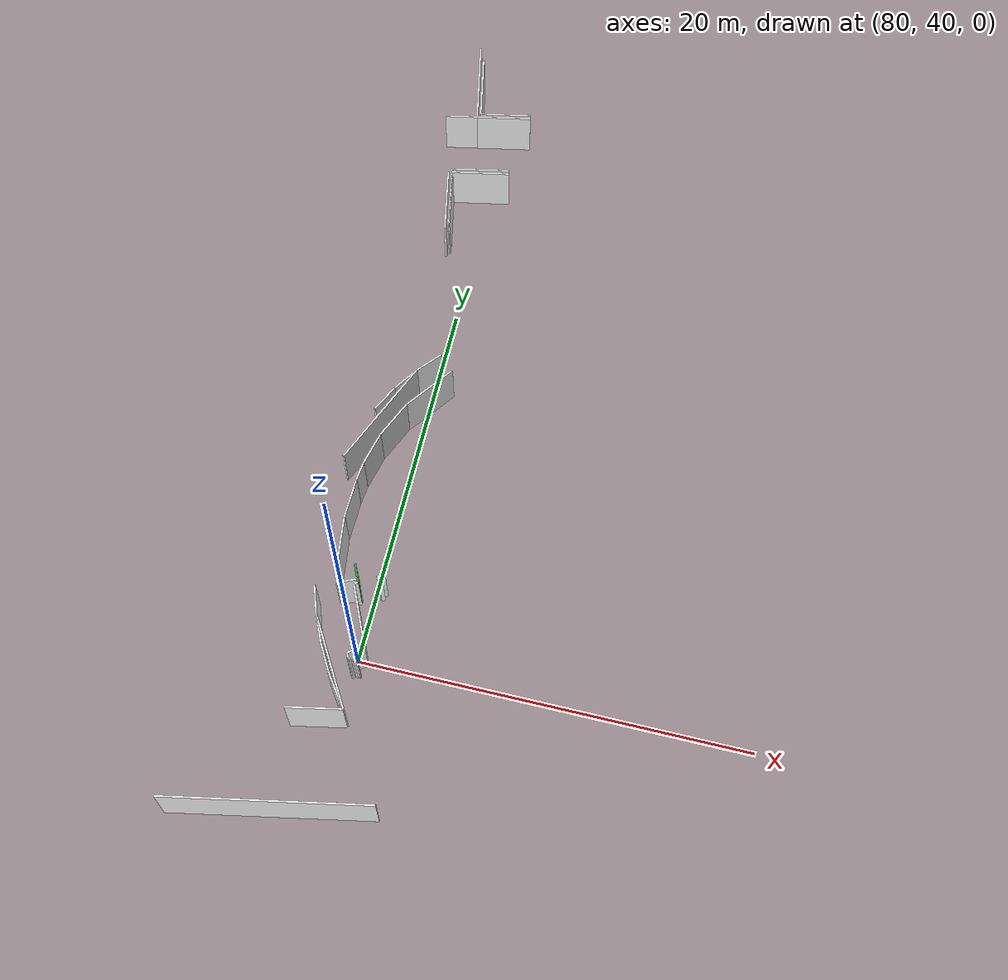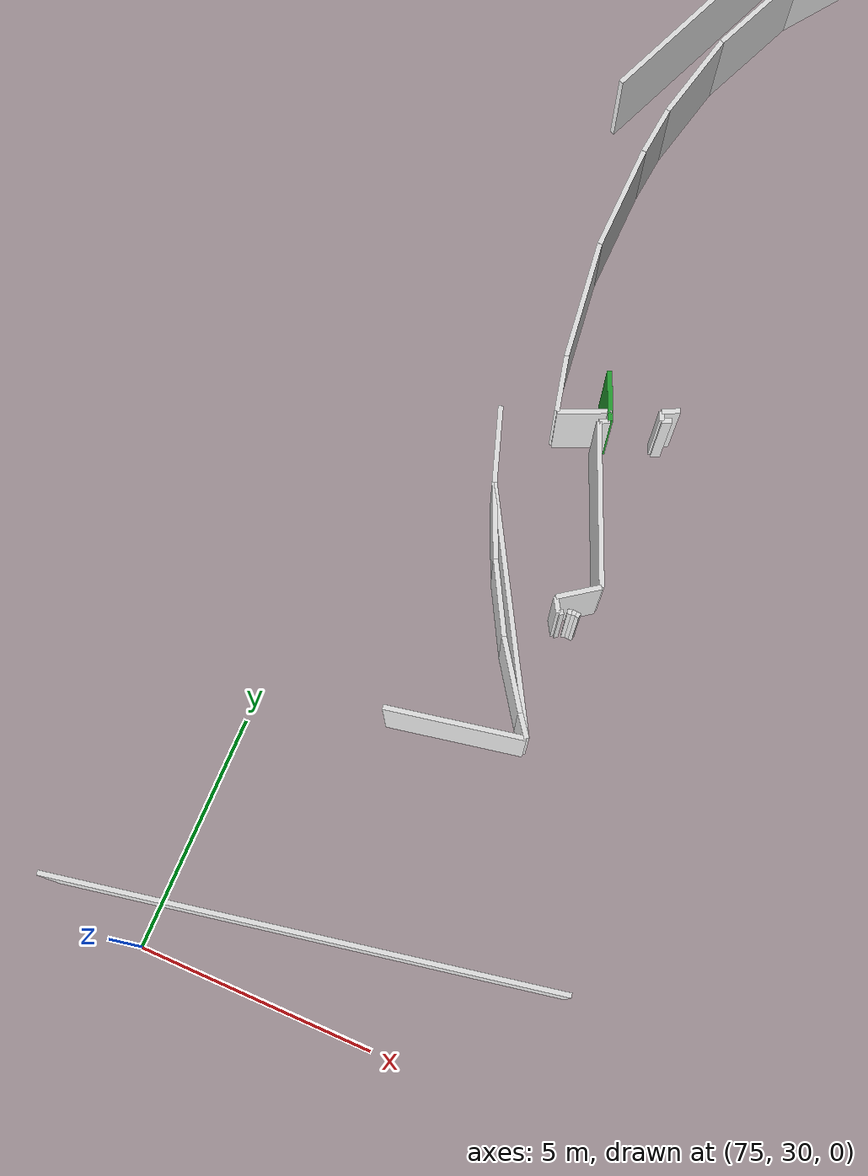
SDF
<sdf version="1.6">
 <world name="default">
  <model name="wall_79.2_43.4_1.5">
   <static>true</static>
   <pose>79.16499999992084 43.43500000005588 1.5 0 0 1.9941070825734064</pose>
   <link name="link">
    <visual name="visual">
     <geometry><box><size>0.9980981917594033 0.1 3</size></box></geometry>
     <material>
      <script><uri>file://media/materials/scripts/gazebo.material</uri><name>Gazebo/Green</name></script>
     </material>
    </visual>
    <collision name="collision"><geometry><box><size>0.9980981917594033 0.1 3</size></box></geometry></collision>
   </link>
  </model>
  <model name="wall_78.2_73.0_1.5">
   <static>true</static>
   <pose>78.22500000000582 73.0250000001397 1.5 0 0 -1.374478352720188</pose>
   <link name="link">
    <visual name="visual">
     <geometry><box><size>3.6399175813241733 0.1 3</size></box></geometry>
     <material>
      <script><uri>file://media/materials/scripts/gazebo.material</uri><name>Gazebo/White</name></script>
     </material>
    </visual>
    <collision name="collision"><geometry><box><size>3.6399175813241733 0.1 3</size></box></geometry></collision>
   </link>
  </model>
  <model name="wall_79.9_71.5_1.5">
   <static>true</static>
   <pose>79.93000000002212 71.50500000012107 1.5 0 0 0.19383178298877288</pose>
   <link name="link">
    <visual name="visual">
     <geometry><box><size>2.7515268488324223 0.1 3</size></box></geometry>
     <material>
      <script><uri>file://media/materials/scripts/gazebo.material</uri><name>Gazebo/White</name></script>
     </material>
    </visual>
    <collision name="collision"><geometry><box><size>2.7515268488324223 0.1 3</size></box></geometry></collision>
   </link>
  </model>
  <model name="wall_79.5_67.5_1.5">
   <static>true</static>
   <pose>79.48500000001513 67.47999999998137 1.5 0 0 -2.9473516575252563</pose>
   <link name="link">
    <visual name="visual">
     <geometry><box><size>3.1084562083905816 0.1 3</size></box></geometry>
     <material>
      <script><uri>file://media/materials/scripts/gazebo.material</uri><name>Gazebo/White</name></script>
     </material>
    </visual>
    <collision name="collision"><geometry><box><size>3.1084562083905816 0.1 3</size></box></geometry></collision>
   </link>
  </model>
  <model name="wall_78.3_65.5_1.5">
   <static>true</static>
   <pose>78.29000000000815 65.52000000001863 1.5 0 0 -1.3745595150025516</pose>
   <link name="link">
    <visual name="visual">
     <geometry><box><size>3.384966765264479 0.1 3</size></box></geometry>
     <material>
      <script><uri>file://media/materials/scripts/gazebo.material</uri><name>Gazebo/White</name></script>
     </material>
    </visual>
    <collision name="collision"><geometry><box><size>3.384966765264479 0.1 3</size></box></geometry></collision>
   </link>
  </model>
  <model name="wall_79.3_42.9_1.5">
   <static>true</static>
   <pose>79.26999999998952 42.93500000005588 1.5 0 0 0.4228539254915673</pose>
   <link name="link">
    <visual name="visual">
     <geometry><box><size>0.21931712194408015 0.1 3</size></box></geometry>
     <material>
      <script><uri>file://media/materials/scripts/gazebo.material</uri><name>Gazebo/White</name></script>
     </material>
    </visual>
    <collision name="collision"><geometry><box><size>0.21931712194408015 0.1 3</size></box></geometry></collision>
   </link>
  </model>
  <model name="wall_80.4_43.4_1.5">
   <static>true</static>
   <pose>80.37000000002445 43.43000000016764 1.5 0 0 0.4182243299392765</pose>
   <link name="link">
    <visual name="visual">
     <geometry><box><size>0.19697715605979885 0.1 3</size></box></geometry>
     <material>
      <script><uri>file://media/materials/scripts/gazebo.material</uri><name>Gazebo/White</name></script>
     </material>
    </visual>
    <collision name="collision"><geometry><box><size>0.19697715605979885 0.1 3</size></box></geometry></collision>
   </link>
  </model>
  <model name="wall_80.3_39.2_1.5">
   <static>true</static>
   <pose>80.32000000000698 39.22500000009313 1.5 0 0 3.0172376617295393</pose>
   <link name="link">
    <visual name="visual">
     <geometry><box><size>0.08062257741367569 0.1 3</size></box></geometry>
     <material>
      <script><uri>file://media/materials/scripts/gazebo.material</uri><name>Gazebo/White</name></script>
     </material>
    </visual>
    <collision name="collision"><geometry><box><size>0.08062257741367569 0.1 3</size></box></geometry></collision>
   </link>
  </model>
  <model name="wall_80.2_39.2_1.5">
   <static>true</static>
   <pose>80.23500000001513 39.22999999998137 1.5 0 0 3.141592653589793</pose>
   <link name="link">
    <visual name="visual">
     <geometry><box><size>0.09000000002561137 0.1 3</size></box></geometry>
     <material>
      <script><uri>file://media/materials/scripts/gazebo.material</uri><name>Gazebo/White</name></script>
     </material>
    </visual>
    <collision name="collision"><geometry><box><size>0.09000000002561137 0.1 3</size></box></geometry></collision>
   </link>
  </model>
  <model name="wall_80.1_39.2_1.5">
   <static>true</static>
   <pose>80.14999999999418 39.21999999997206 1.5 0 0 -2.8966139902917303</pose>
   <link name="link">
    <visual name="visual">
     <geometry><box><size>0.08246211253268232 0.1 3</size></box></geometry>
     <material>
      <script><uri>file://media/materials/scripts/gazebo.material</uri><name>Gazebo/White</name></script>
     </material>
    </visual>
    <collision name="collision"><geometry><box><size>0.08246211253268232 0.1 3</size></box></geometry></collision>
   </link>
  </model>
  <model name="wall_80.0_39.1_1.5">
   <static>true</static>
   <pose>80.00499999997555 39.14500000001863 1.5 0 0 -2.521343169416129</pose>
   <link name="link">
    <visual name="visual">
     <geometry><box><size>0.08602325256784608 0.1 3</size></box></geometry>
     <material>
      <script><uri>file://media/materials/scripts/gazebo.material</uri><name>Gazebo/White</name></script>
     </material>
    </visual>
    <collision name="collision"><geometry><box><size>0.08602325256784608 0.1 3</size></box></geometry></collision>
   </link>
  </model>
  <model name="wall_79.9_39.2_1.5">
   <static>true</static>
   <pose>79.875 39.24499999987893 1.5 0 0 2.1327178891317615</pose>
   <link name="link">
    <visual name="visual">
     <geometry><box><size>0.3190611227089686 0.1 3</size></box></geometry>
     <material>
      <script><uri>file://media/materials/scripts/gazebo.material</uri><name>Gazebo/White</name></script>
     </material>
    </visual>
    <collision name="collision"><geometry><box><size>0.3190611227089686 0.1 3</size></box></geometry></collision>
   </link>
  </model>
  <model name="wall_80.2_39.6_1.5">
   <static>true</static>
   <pose>80.15499999999884 39.64500000001863 1.5 0 0 0.6279812908789976</pose>
   <link name="link">
    <visual name="visual">
     <geometry><box><size>0.9021086410927485 0.1 3</size></box></geometry>
     <material>
      <script><uri>file://media/materials/scripts/gazebo.material</uri><name>Gazebo/White</name></script>
     </material>
    </visual>
    <collision name="collision"><geometry><box><size>0.9021086410927485 0.1 3</size></box></geometry></collision>
   </link>
  </model>
  <model name="wall_79.8_41.4_1.5">
   <static>true</static>
   <pose>79.84500000000116 41.4000000001397 1.5 0 0 1.9961589584783586</pose>
   <link name="link">
    <visual name="visual">
     <geometry><box><size>3.2715286946599265 0.1 3</size></box></geometry>
     <material>
      <script><uri>file://media/materials/scripts/gazebo.material</uri><name>Gazebo/White</name></script>
     </material>
    </visual>
    <collision name="collision"><geometry><box><size>3.2715286946599265 0.1 3</size></box></geometry></collision>
   </link>
  </model>
  <model name="wall_78.1_50.1_1.5">
   <static>true</static>
   <pose>78.11000000001513 50.10499999998137 1.5 0 0 1.3352513460828392</pose>
   <link name="link">
    <visual name="visual">
     <geometry><box><size>1.7996944185017383 0.1 3</size></box></geometry>
     <material>
      <script><uri>file://media/materials/scripts/gazebo.material</uri><name>Gazebo/White</name></script>
     </material>
    </visual>
    <collision name="collision"><geometry><box><size>1.7996944185017383 0.1 3</size></box></geometry></collision>
   </link>
  </model>
  <model name="wall_78.8_52.0_1.5">
   <static>true</static>
   <pose>78.75 51.96500000008382 1.5 0 0 1.1591850326473987</pose>
   <link name="link">
    <visual name="visual">
     <geometry><box><size>2.1495348335821967 0.1 3</size></box></geometry>
     <material>
      <script><uri>file://media/materials/scripts/gazebo.material</uri><name>Gazebo/White</name></script>
     </material>
    </visual>
    <collision name="collision"><geometry><box><size>2.1495348335821967 0.1 3</size></box></geometry></collision>
   </link>
  </model>
  <model name="wall_80.1_54.2_1.5">
   <static>true</static>
   <pose>80.07499999998254 54.16500000003725 1.5 0 0 0.9359099816356786</pose>
   <link name="link">
    <visual name="visual">
     <geometry><box><size>3.018111992368174 0.1 3</size></box></geometry>
     <material>
      <script><uri>file://media/materials/scripts/gazebo.material</uri><name>Gazebo/White</name></script>
     </material>
    </visual>
    <collision name="collision"><geometry><box><size>3.018111992368174 0.1 3</size></box></geometry></collision>
   </link>
  </model>
  <model name="wall_80.4_43.6_1.5">
   <static>true</static>
   <pose>80.36500000001979 43.640000000130385 1.5 0 0 -2.6901395616910224</pose>
   <link name="link">
    <visual name="visual">
     <geometry><box><size>0.3667424164975201 0.1 3</size></box></geometry>
     <material>
      <script><uri>file://media/materials/scripts/gazebo.material</uri><name>Gazebo/White</name></script>
     </material>
    </visual>
    <collision name="collision"><geometry><box><size>0.3667424164975201 0.1 3</size></box></geometry></collision>
   </link>
  </model>
  <model name="wall_80.2_43.5_1.5">
   <static>true</static>
   <pose>80.24000000001979 43.47500000009313 1.5 0 0 -1.1309537437318191</pose>
   <link name="link">
    <visual name="visual">
     <geometry><box><size>0.1878829422200848 0.1 3</size></box></geometry>
     <material>
      <script><uri>file://media/materials/scripts/gazebo.material</uri><name>Gazebo/White</name></script>
     </material>
    </visual>
    <collision name="collision"><geometry><box><size>0.1878829422200848 0.1 3</size></box></geometry></collision>
   </link>
  </model>
  <model name="wall_79.3_43.1_1.5">
   <static>true</static>
   <pose>79.32500000001164 43.07000000006519 1.5 0 0 2.0344439352783015</pose>
   <link name="link">
    <visual name="visual">
     <geometry><box><size>0.20124611811034362 0.1 3</size></box></geometry>
     <material>
      <script><uri>file://media/materials/scripts/gazebo.material</uri><name>Gazebo/White</name></script>
     </material>
    </visual>
    <collision name="collision"><geometry><box><size>0.20124611811034362 0.1 3</size></box></geometry></collision>
   </link>
  </model>
  <model name="wall_78.8_43.0_1.5">
   <static>true</static>
   <pose>78.81000000002678 42.950000000186265 1.5 0 0 -2.7213959400475116</pose>
   <link name="link">
    <visual name="visual">
     <geometry><box><size>1.029563014070432 0.1 3</size></box></geometry>
     <material>
      <script><uri>file://media/materials/scripts/gazebo.material</uri><name>Gazebo/White</name></script>
     </material>
    </visual>
    <collision name="collision"><geometry><box><size>1.029563014070432 0.1 3</size></box></geometry></collision>
   </link>
  </model>
  <model name="wall_78.2_43.3_1.5">
   <static>true</static>
   <pose>78.2050000000163 43.28500000014901 1.5 0 0 1.8136151661143607</pose>
   <link name="link">
    <visual name="visual">
     <geometry><box><size>1.1229425629502219 0.1 3</size></box></geometry>
     <material>
      <script><uri>file://media/materials/scripts/gazebo.material</uri><name>Gazebo/White</name></script>
     </material>
    </visual>
    <collision name="collision"><geometry><box><size>1.1229425629502219 0.1 3</size></box></geometry></collision>
   </link>
  </model>
  <model name="wall_77.9_45.0_1.5">
   <static>true</static>
   <pose>77.91500000000815 45.0 1.5 0 0 1.7025079936748562</pose>
   <link name="link">
    <visual name="visual">
     <geometry><box><size>2.360444873175644 0.1 3</size></box></geometry>
     <material>
      <script><uri>file://media/materials/scripts/gazebo.material</uri><name>Gazebo/White</name></script>
     </material>
    </visual>
    <collision name="collision"><geometry><box><size>2.360444873175644 0.1 3</size></box></geometry></collision>
   </link>
  </model>
  <model name="wall_77.8_47.2_1.5">
   <static>true</static>
   <pose>77.77999999999884 47.21499999985099 1.5 0 0 1.5516599071002037</pose>
   <link name="link">
    <visual name="visual">
     <geometry><box><size>2.090382739924786 0.1 3</size></box></geometry>
     <material>
      <script><uri>file://media/materials/scripts/gazebo.material</uri><name>Gazebo/White</name></script>
     </material>
    </visual>
    <collision name="collision"><geometry><box><size>2.090382739924786 0.1 3</size></box></geometry></collision>
   </link>
  </model>
  <model name="wall_77.9_48.7_1.5">
   <static>true</static>
   <pose>77.85000000000582 48.74499999987893 1.5 0 0 1.4680664593621482</pose>
   <link name="link">
    <visual name="visual">
     <geometry><box><size>0.9751410156507998 0.1 3</size></box></geometry>
     <material>
      <script><uri>file://media/materials/scripts/gazebo.material</uri><name>Gazebo/White</name></script>
     </material>
    </visual>
    <collision name="collision"><geometry><box><size>0.9751410156507998 0.1 3</size></box></geometry></collision>
   </link>
  </model>
  <model name="wall_77.6_70.8_1.5">
   <static>true</static>
   <pose>77.57000000000698 70.83999999985099 1.5 0 0 0.1951584270363837</pose>
   <link name="link">
    <visual name="visual">
     <geometry><box><size>1.7532826354591435 0.1 3</size></box></geometry>
     <material>
      <script><uri>file://media/materials/scripts/gazebo.material</uri><name>Gazebo/White</name></script>
     </material>
    </visual>
    <collision name="collision"><geometry><box><size>1.7532826354591435 0.1 3</size></box></geometry></collision>
   </link>
  </model>
  <model name="wall_78.0_73.3_1.5">
   <static>true</static>
   <pose>77.97000000000116 73.29999999981374 1.5 0 0 1.769031517003461</pose>
   <link name="link">
    <visual name="visual">
     <geometry><box><size>4.6714879857120994 0.1 3</size></box></geometry>
     <material>
      <script><uri>file://media/materials/scripts/gazebo.material</uri><name>Gazebo/White</name></script>
     </material>
    </visual>
    <collision name="collision"><geometry><box><size>4.6714879857120994 0.1 3</size></box></geometry></collision>
   </link>
  </model>
  <model name="wall_79.4_67.7_1.5">
   <static>true</static>
   <pose>79.44000000000233 67.67999999993481 1.5 0 0 -2.946728733873762</pose>
   <link name="link">
    <visual name="visual">
     <geometry><box><size>3.0986448651528713 0.1 3</size></box></geometry>
     <material>
      <script><uri>file://media/materials/scripts/gazebo.material</uri><name>Gazebo/White</name></script>
     </material>
    </visual>
    <collision name="collision"><geometry><box><size>3.0986448651528713 0.1 3</size></box></geometry></collision>
   </link>
  </model>
  <model name="wall_79.9_71.3_1.5">
   <static>true</static>
   <pose>79.875 71.2949999999255 1.5 0 0 0.1947324503984289</pose>
   <link name="link">
    <visual name="visual">
     <geometry><box><size>2.9456747954281193 0.1 3</size></box></geometry>
     <material>
      <script><uri>file://media/materials/scripts/gazebo.material</uri><name>Gazebo/White</name></script>
     </material>
    </visual>
    <collision name="collision"><geometry><box><size>2.9456747954281193 0.1 3</size></box></geometry></collision>
   </link>
  </model>
  <model name="wall_78.1_65.4_1.5">
   <static>true</static>
   <pose>78.11999999999534 65.38500000000931 1.5 0 0 -1.3739487121216474</pose>
   <link name="link">
    <visual name="visual">
     <geometry><box><size>3.5791200038046584 0.1 3</size></box></geometry>
     <material>
      <script><uri>file://media/materials/scripts/gazebo.material</uri><name>Gazebo/White</name></script>
     </material>
    </visual>
    <collision name="collision"><geometry><box><size>3.5791200038046584 0.1 3</size></box></geometry></collision>
   </link>
  </model>
  <model name="wall_79.7_55.6_1.5">
   <static>true</static>
   <pose>79.69000000000233 55.57000000006519 1.5 0 0 -2.282255452669402</pose>
   <link name="link">
    <visual name="visual">
     <geometry><box><size>1.5315351772862982 0.1 3</size></box></geometry>
     <material>
      <script><uri>file://media/materials/scripts/gazebo.material</uri><name>Gazebo/White</name></script>
     </material>
    </visual>
    <collision name="collision"><geometry><box><size>1.5315351772862982 0.1 3</size></box></geometry></collision>
   </link>
  </model>
  <model name="wall_78.8_54.4_1.5">
   <static>true</static>
   <pose>78.76500000001397 54.35000000009313 1.5 0 0 -2.1569938780447484</pose>
   <link name="link">
    <visual name="visual">
     <geometry><box><size>1.5365220469059306 0.1 3</size></box></geometry>
     <material>
      <script><uri>file://media/materials/scripts/gazebo.material</uri><name>Gazebo/White</name></script>
     </material>
    </visual>
    <collision name="collision"><geometry><box><size>1.5365220469059306 0.1 3</size></box></geometry></collision>
   </link>
  </model>
  <model name="wall_78.0_53.0_1.5">
   <static>true</static>
   <pose>78.0 53.02000000001863 1.5 0 0 -2.0286300478758363</pose>
   <link name="link">
    <visual name="visual">
     <geometry><box><size>1.538440769012967 0.1 3</size></box></geometry>
     <material>
      <script><uri>file://media/materials/scripts/gazebo.material</uri><name>Gazebo/White</name></script>
     </material>
    </visual>
    <collision name="collision"><geometry><box><size>1.538440769012967 0.1 3</size></box></geometry></collision>
   </link>
  </model>
  <model name="wall_77.5_41.7_1.5">
   <static>true</static>
   <pose>77.54999999998836 41.675000000046566 1.5 0 0 -1.2344330339143665</pose>
   <link name="link">
    <visual name="visual">
     <geometry><box><size>1.5148927356349178 0.1 3</size></box></geometry>
     <material>
      <script><uri>file://media/materials/scripts/gazebo.material</uri><name>Gazebo/White</name></script>
     </material>
    </visual>
    <collision name="collision"><geometry><box><size>1.5148927356349178 0.1 3</size></box></geometry></collision>
   </link>
  </model>
  <model name="wall_78.1_40.3_1.5">
   <static>true</static>
   <pose>78.11499999999069 40.27499999990687 1.5 0 0 -1.1397780825490453</pose>
   <link name="link">
    <visual name="visual">
     <geometry><box><size>1.507912464406368 0.1 3</size></box></geometry>
     <material>
      <script><uri>file://media/materials/scripts/gazebo.material</uri><name>Gazebo/White</name></script>
     </material>
    </visual>
    <collision name="collision"><geometry><box><size>1.507912464406368 0.1 3</size></box></geometry></collision>
   </link>
  </model>
  <model name="wall_78.8_38.9_1.5">
   <static>true</static>
   <pose>78.80999999999767 38.92999999993481 1.5 0 0 -1.048392895018153</pose>
   <link name="link">
    <visual name="visual">
     <geometry><box><size>1.5231546210321498 0.1 3</size></box></geometry>
     <material>
      <script><uri>file://media/materials/scripts/gazebo.material</uri><name>Gazebo/White</name></script>
     </material>
    </visual>
    <collision name="collision"><geometry><box><size>1.5231546210321498 0.1 3</size></box></geometry></collision>
   </link>
  </model>
  <model name="wall_79.6_37.7_1.5">
   <static>true</static>
   <pose>79.63000000000466 37.65500000002794 1.5 0 0 -0.9497782014457066</pose>
   <link name="link">
    <visual name="visual">
     <geometry><box><size>1.5123822268072231 0.1 3</size></box></geometry>
     <material>
      <script><uri>file://media/materials/scripts/gazebo.material</uri><name>Gazebo/White</name></script>
     </material>
    </visual>
    <collision name="collision"><geometry><box><size>1.5123822268072231 0.1 3</size></box></geometry></collision>
   </link>
  </model>
  <model name="wall_80.2_36.8_1.5">
   <static>true</static>
   <pose>80.22500000000582 36.84000000008382 1.5 0 0 -0.911486258352942</pose>
   <link name="link">
    <visual name="visual">
     <geometry><box><size>0.5060632370801604 0.1 3</size></box></geometry>
     <material>
      <script><uri>file://media/materials/scripts/gazebo.material</uri><name>Gazebo/White</name></script>
     </material>
    </visual>
    <collision name="collision"><geometry><box><size>0.5060632370801604 0.1 3</size></box></geometry></collision>
   </link>
  </model>
  <model name="wall_79.0_36.4_1.5">
   <static>true</static>
   <pose>79.0 36.360000000102445 1.5 0 0 -2.9414115856051164</pose>
   <link name="link">
    <visual name="visual">
     <geometry><box><size>2.816238626273348 0.1 3</size></box></geometry>
     <material>
      <script><uri>file://media/materials/scripts/gazebo.material</uri><name>Gazebo/White</name></script>
     </material>
    </visual>
    <collision name="collision"><geometry><box><size>2.816238626273348 0.1 3</size></box></geometry></collision>
   </link>
  </model>
  <model name="wall_78.0_31.5_1.5">
   <static>true</static>
   <pose>78.02499999999418 31.540000000037253 1.5 0 0 0.19417892004540582</pose>
   <link name="link">
    <visual name="visual">
     <geometry><box><size>10.364791363055433 0.1 3</size></box></geometry>
     <material>
      <script><uri>file://media/materials/scripts/gazebo.material</uri><name>Gazebo/White</name></script>
     </material>
    </visual>
    <collision name="collision"><geometry><box><size>10.364791363055433 0.1 3</size></box></geometry></collision>
   </link>
  </model>
  <model name="wall_79.1_38.8_1.5">
   <static>true</static>
   <pose>79.08999999999651 38.800000000046566 1.5 0 0 2.10917084016099</pose>
   <link name="link">
    <visual name="visual">
     <geometry><box><size>5.031779009320233 0.1 3</size></box></geometry>
     <material>
      <script><uri>file://media/materials/scripts/gazebo.material</uri><name>Gazebo/White</name></script>
     </material>
    </visual>
    <collision name="collision"><geometry><box><size>5.031779009320233 0.1 3</size></box></geometry></collision>
   </link>
  </model>
  <model name="wall_78.0_52.2_1.5">
   <static>true</static>
   <pose>78.00500000000466 52.19000000017695 1.5 0 0 1.1704391671759413</pose>
   <link name="link">
    <visual name="visual">
     <geometry><box><size>6.080863425618191 0.1 3</size></box></geometry>
     <material>
      <script><uri>file://media/materials/scripts/gazebo.material</uri><name>Gazebo/White</name></script>
     </material>
    </visual>
    <collision name="collision"><geometry><box><size>6.080863425618191 0.1 3</size></box></geometry></collision>
   </link>
  </model>
  <model name="wall_78.3_65.6_1.5">
   <static>true</static>
   <pose>78.26999999998952 65.61999999987893 1.5 0 0 1.7670989909072092</pose>
   <link name="link">
    <visual name="visual">
     <geometry><box><size>3.5889274163944065 0.1 3</size></box></geometry>
     <material>
      <script><uri>file://media/materials/scripts/gazebo.material</uri><name>Gazebo/White</name></script>
     </material>
    </visual>
    <collision name="collision"><geometry><box><size>3.5889274163944065 0.1 3</size></box></geometry></collision>
   </link>
  </model>
 </world>
</sdf>
